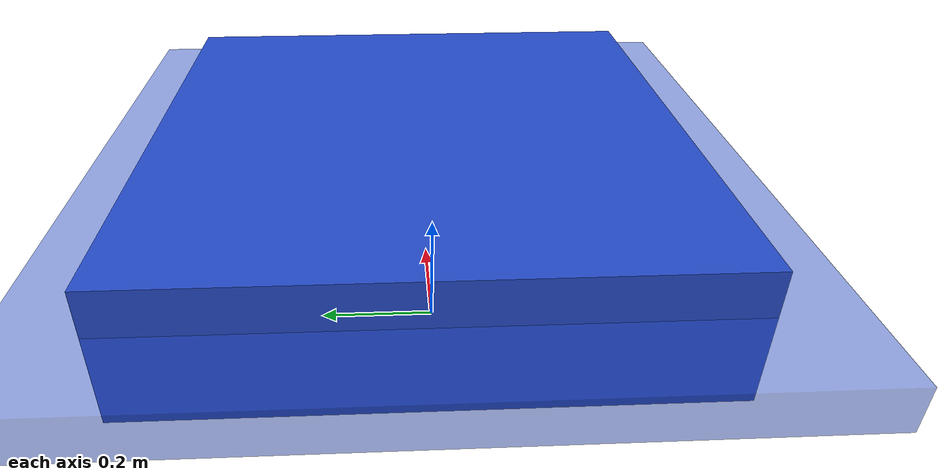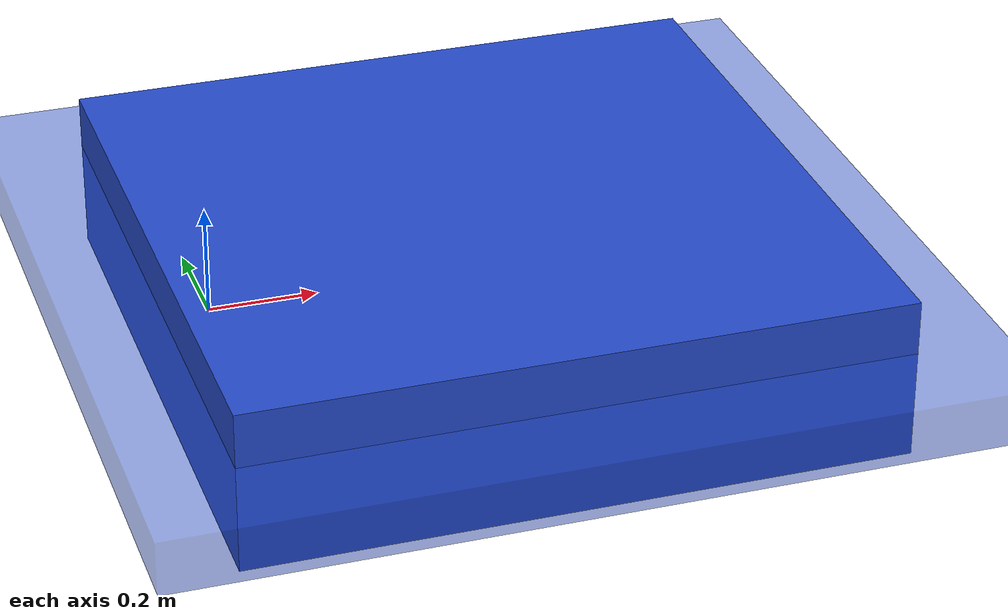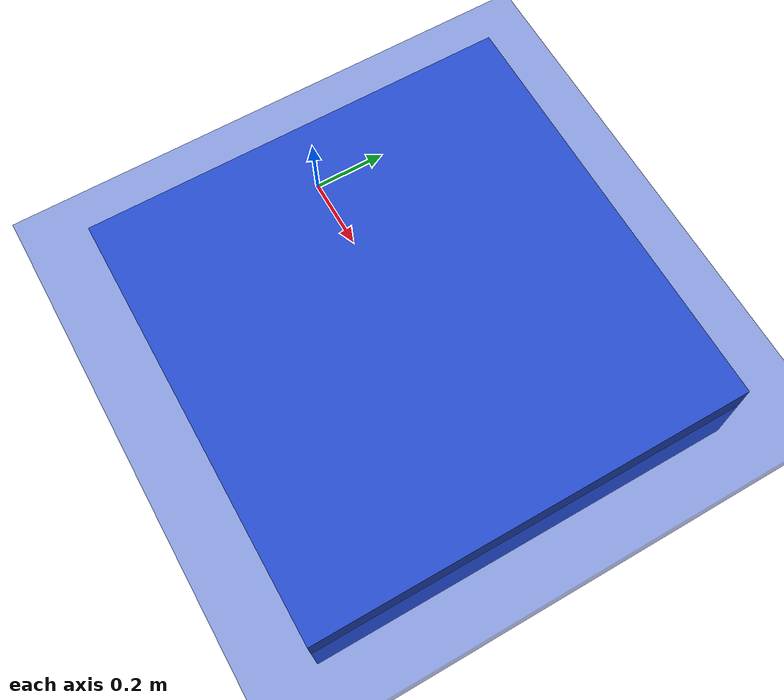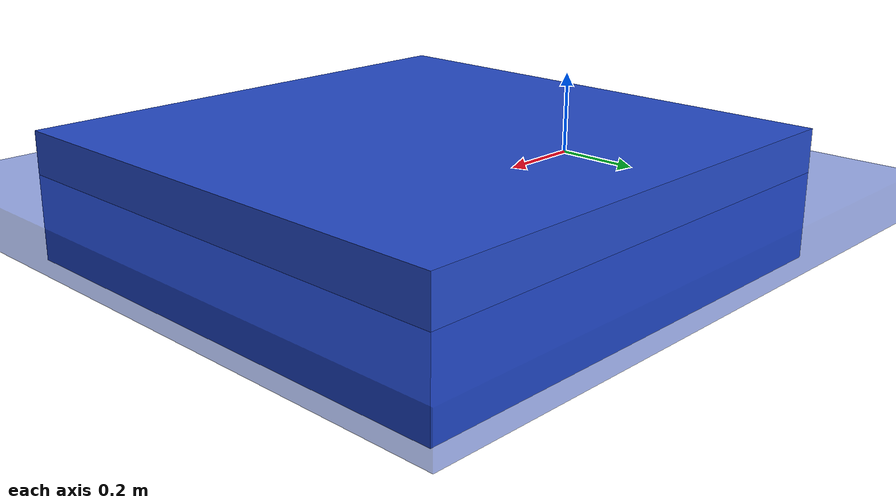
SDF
<?xml version="1.0" ?>
<sdf version="1.4">
  <world name="default">
    <include>
      <uri>model://ground_plane</uri>
    </include>
    <include>
      <uri>model://sun</uri>
    </include>
    <include>
      <uri>model://landing_platform</uri>
      <pose>0.5 0 0 0 0 0</pose>
    </include>

    <!-- Only require one ROS interface plugin per world, as any other plugin can connect a Gazebo
        topic to a ROS topic (or vise versa). -->
    <plugin name="ros_interface_plugin" filename="librotors_gazebo_ros_interface_plugin.so"></plugin>
    <!-- Rl Interface Plugin -->
    <plugin name="ros_rl_interface_plugin" filename="librl_gazebo_interface_plugin.so"></plugin>

    <spherical_coordinates>
      <surface_model>EARTH_WGS84</surface_model>
      <latitude_deg>47.3667</latitude_deg>
      <longitude_deg>8.5500</longitude_deg>
      <elevation>500.0</elevation>
      <heading_deg>0</heading_deg>
    </spherical_coordinates>
    <physics type='ode'>
      <ode>
        <solver>
          <type>quick</type>
          <iters>1000</iters>
          <sor>1.3</sor>
        </solver>
        <constraints>
          <cfm>0</cfm>
          <erp>0.2</erp>
          <contact_max_correcting_vel>100</contact_max_correcting_vel>
          <contact_surface_layer>0.001</contact_surface_layer>
        </constraints>
      </ode>
      <max_step_size>0.01</max_step_size>
      <real_time_factor>1</real_time_factor>
      <real_time_update_rate>100</real_time_update_rate>
      <gravity>0 0 -9.8</gravity>
    </physics>

    <include>
      <static>1</static>
      <pose>0 0 0 0 0 1.5707</pose>
      <uri>model://exploration_area</uri>
    </include>
  </world>
</sdf>

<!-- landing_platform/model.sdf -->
<sdf version="1.4">
  <model name="landing_platform">
    <static>0</static>
    <link name="sensors_link">
        <collision name="box_collision">
          <geometry>
            <box>
              <size>1.2 1.2 0.3</size>
            </box>
          </geometry>
      <surface>
        <friction>
          <ode>
            <mu>0.99</mu>
            <mu2>0.99</mu2>
          </ode>
        </friction>
      </surface>
        </collision>

        <visual name="visual">
          <geometry>
            <box>
              <size>1.2 1.2 0.3</size>
            </box>
          </geometry>
        <material>
          <script>
            <name>Gazebo/blue</name>
            <uri>file://media/materials/scripts/gazebo.material</uri>
          </script>
          <ambient>0.3 0.3 0.3 1</ambient>
          <diffuse>0.2 0.7 0.7 1</diffuse>
          <specular>0.01 0.01 0.01 1</specular>
          <emissive>0.2 0.7 0 1</emissive>
          <shader type='vertex'>
            <normal_map>__default__</normal_map>
          </shader>
        </material>
        <pose frame=''>0 0 0 0 -0 0</pose>
        <cast_shadows>1</cast_shadows>
        <transparency>0.0</transparency>
        </visual>
      <sensor name="contact_sensor_1" type="contact">
	<plugin name="my_contact_plugin" filename="libgazebo_ros_bumper.so"/>
          <contact>
            <collision>box_collision</collision>
          </contact>
      </sensor>
    </link>
      <plugin name="model_push" filename="libgazebo_moving_platform.so">
        <robotNamespace>/</robotNamespace>
      </plugin>
  </model>
</sdf>

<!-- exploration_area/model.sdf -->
<sdf version='1.5'>
  <model name='exploration_area'>
    <link name='link'>
      <pose frame=''>0 0 0 0 -0 0</pose>
      <inertial>
        <mass>1</mass>
        <inertia>
          <ixx>0.145833</ixx>
          <ixy>0</ixy>
          <ixz>0</ixz>
          <iyy>0.145833</iyy>
          <iyz>0</iyz>
          <izz>0.125</izz>
        </inertia>
        <pose frame=''>0 0 0 0 -0 0</pose>
      </inertial>
      <self_collide>0</self_collide>
      <kinematic>0</kinematic>
      <gravity>1</gravity>
      <visual name='visual'>
        <geometry>
          <box>
		<size>4 4 .1</size>
          </box>
        </geometry>
        <material>
          <script>
            <name>Gazebo/blue</name>
            <uri>file://media/materials/scripts/gazebo.material</uri>
          </script>
          <ambient>0.3 0.3 0.3 1</ambient>
          <diffuse>0.2 0.7 0.7 1</diffuse>
          <specular>0.01 0.01 0.01 1</specular>
          <emissive>0.2 0 0.7 1</emissive>
          <shader type='vertex'>
            <normal_map>__default__</normal_map>
          </shader>
        </material>
        <pose frame=''>0 0 0 0 -0 0</pose>
        <cast_shadows>1</cast_shadows>
        <transparency>0.5</transparency>
      </visual>
    </link>
    <static>0</static>
    <allow_auto_disable>1</allow_auto_disable>
  </model>
</sdf>
